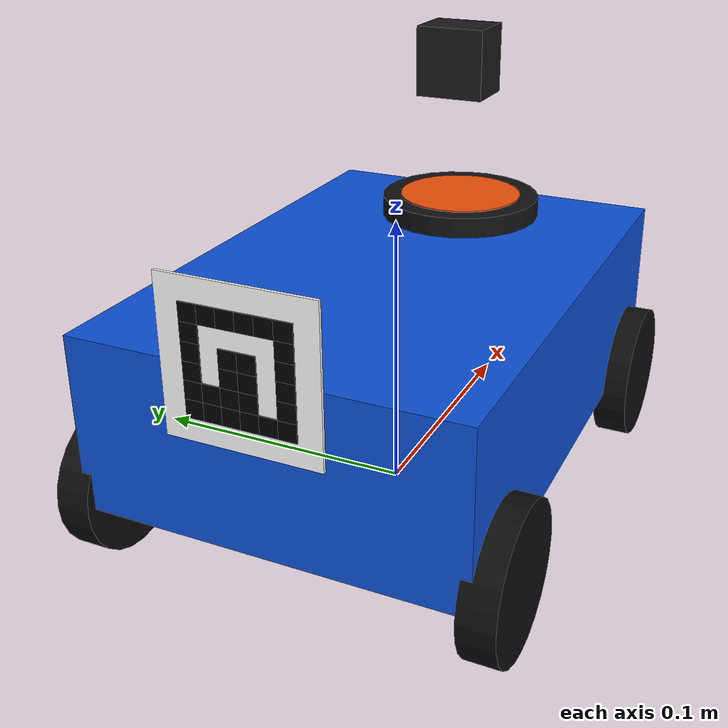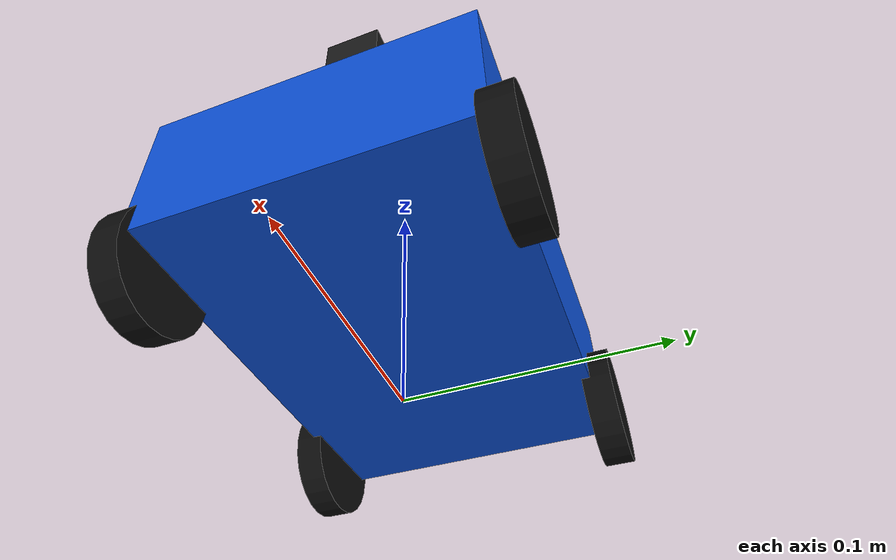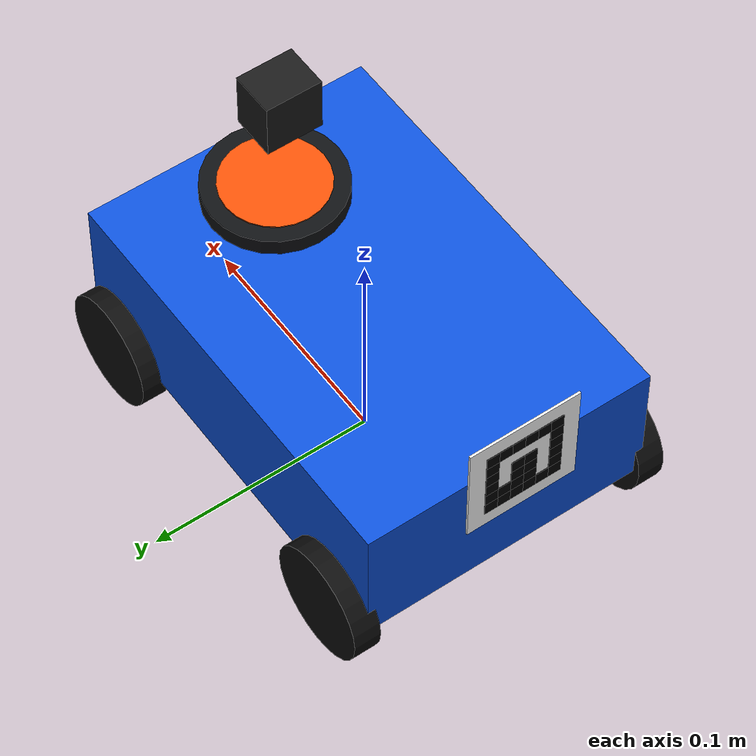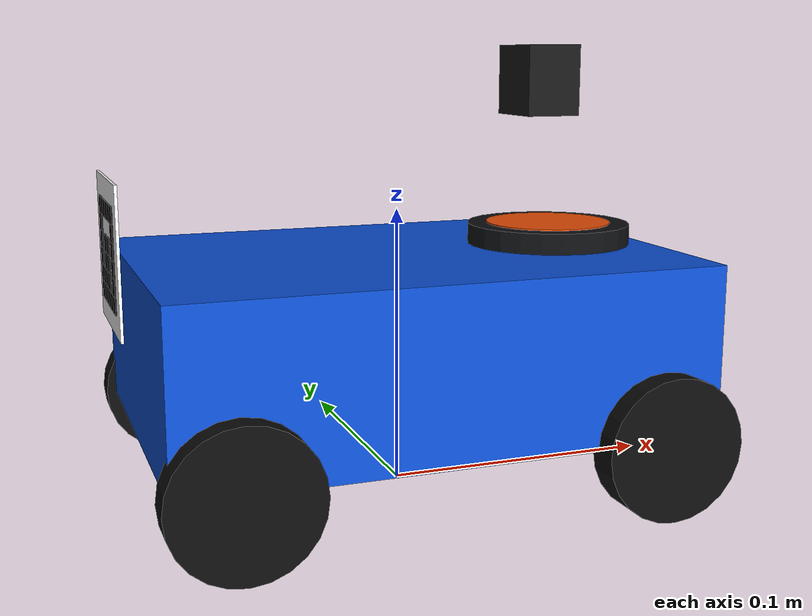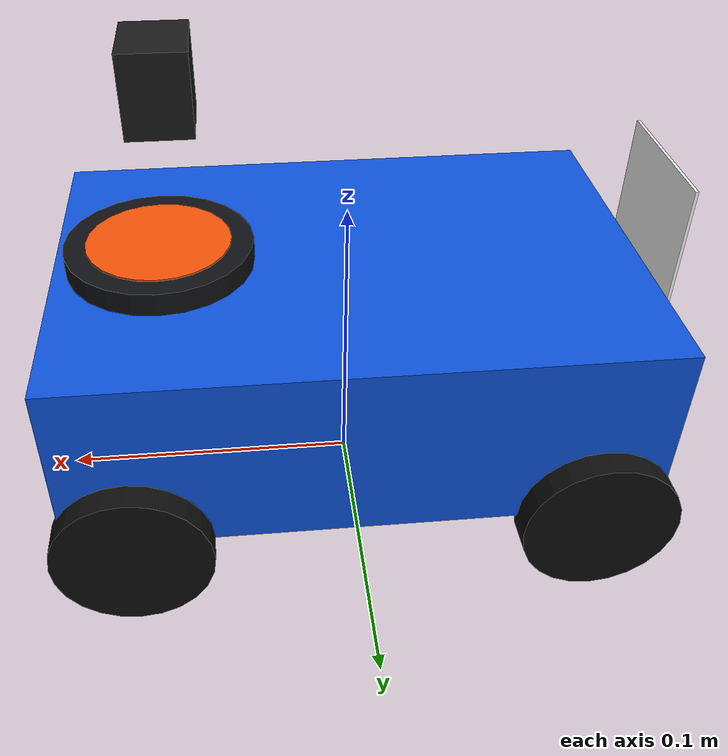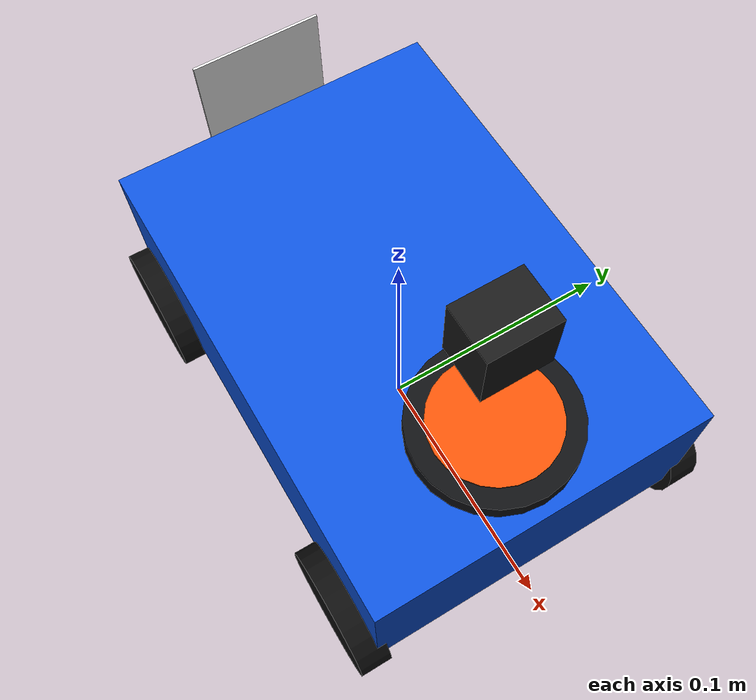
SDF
<sdf version="1.10"><model name="arena_car"><self_collide>false</self_collide><allow_auto_disable>false</allow_auto_disable><link name="chassis"><pose>0 0 0.055 0 0 0</pose><inertial><pose>0 0 0.0 0 0 0</pose><mass>1.697</mass><inertia><ixx>0.0036909749999999996</ixx><ixy>0</ixy><ixz>0</ixz><iyy>0.0061657666666666685</iyy><iyz>0</iyz><izz>0.008838541666666666</izz></inertia></inertial><visual name="visual"><geometry><box><size>0.188 0.13 0.06</size></box></geometry><material><ambient>0.04 0.24 0.65 1</ambient><diffuse>0.05 0.32 0.85 1</diffuse><specular>0.2 0.2 0.2 1</specular></material></visual><visual name="rear_marker_id10_board"><pose>-0.1005 0.0
                0.034999999999999996
                0 0 3.1415926536</pose><geometry><box><size>0.001 0.05 0.05</size></box></geometry><material><ambient>1 1 1 1</ambient><diffuse>1 1 1 1</diffuse><specular>0 0 0 1</specular></material><cast_shadows>false</cast_shadows></visual><visual name="rear_marker_id10_ink_0_0"><pose>-0.10120000000014887
            0.01458333333332619
            0.04958333333333333
            0 0 3.1415926536</pose><geometry><box><size>0.0004 0.005833333333333334 0.005833333333333334</size></box></geometry><material><ambient>0.002 0.002 0.002 1</ambient><diffuse>0.002 0.002 0.002 1</diffuse><specular>0 0 0 1</specular></material><cast_shadows>false</cast_shadows></visual><visual name="rear_marker_id10_ink_0_1"><pose>-0.10120000000008932
            0.008749999999992856
            0.04958333333333333
            0 0 3.1415926536</pose><geometry><box><size>0.0004 0.005833333333333334 0.005833333333333334</size></box></geometry><material><ambient>0.002 0.002 0.002 1</ambient><diffuse>0.002 0.002 0.002 1</diffuse><specular>0 0 0 1</specular></material><cast_shadows>false</cast_shadows></visual><visual name="rear_marker_id10_ink_0_2"><pose>-0.10120000000002978
            0.002916666666659523
            0.04958333333333333
            0 0 3.1415926536</pose><geometry><box><size>0.0004 0.005833333333333334 0.005833333333333334</size></box></geometry><material><ambient>0.002 0.002 0.002 1</ambient><diffuse>0.002 0.002 0.002 1</diffuse><specular>0 0 0 1</specular></material><cast_shadows>false</cast_shadows></visual><visual name="rear_marker_id10_ink_0_3"><pose>-0.10119999999997024
            -0.0029166666666738095
            0.04958333333333333
            0 0 3.1415926536</pose><geometry><box><size>0.0004 0.005833333333333334 0.005833333333333334</size></box></geometry><material><ambient>0.002 0.002 0.002 1</ambient><diffuse>0.002 0.002 0.002 1</diffuse><specular>0 0 0 1</specular></material><cast_shadows>false</cast_shadows></visual><visual name="rear_marker_id10_ink_0_4"><pose>-0.10119999999991071
            -0.008750000000007146
            0.04958333333333333
            0 0 3.1415926536</pose><geometry><box><size>0.0004 0.005833333333333334 0.005833333333333334</size></box></geometry><material><ambient>0.002 0.002 0.002 1</ambient><diffuse>0.002 0.002 0.002 1</diffuse><specular>0 0 0 1</specular></material><cast_shadows>false</cast_shadows></visual><visual name="rear_marker_id10_ink_0_5"><pose>-0.10119999999985116
            -0.014583333333340475
            0.04958333333333333
            0 0 3.1415926536</pose><geometry><box><size>0.0004 0.005833333333333334 0.005833333333333334</size></box></geometry><material><ambient>0.002 0.002 0.002 1</ambient><diffuse>0.002 0.002 0.002 1</diffuse><specular>0 0 0 1</specular></material><cast_shadows>false</cast_shadows></visual><visual name="rear_marker_id10_ink_1_0"><pose>-0.10120000000014887
            0.01458333333332619
            0.04375
            0 0 3.1415926536</pose><geometry><box><size>0.0004 0.005833333333333334 0.005833333333333334</size></box></geometry><material><ambient>0.002 0.002 0.002 1</ambient><diffuse>0.002 0.002 0.002 1</diffuse><specular>0 0 0 1</specular></material><cast_shadows>false</cast_shadows></visual><visual name="rear_marker_id10_ink_1_5"><pose>-0.10119999999985116
            -0.014583333333340475
            0.04375
            0 0 3.1415926536</pose><geometry><box><size>0.0004 0.005833333333333334 0.005833333333333334</size></box></geometry><material><ambient>0.002 0.002 0.002 1</ambient><diffuse>0.002 0.002 0.002 1</diffuse><specular>0 0 0 1</specular></material><cast_shadows>false</cast_shadows></visual><visual name="rear_marker_id10_ink_2_0"><pose>-0.10120000000014887
            0.01458333333332619
            0.03791666666666667
            0 0 3.1415926536</pose><geometry><box><size>0.0004 0.005833333333333334 0.005833333333333334</size></box></geometry><material><ambient>0.002 0.002 0.002 1</ambient><diffuse>0.002 0.002 0.002 1</diffuse><specular>0 0 0 1</specular></material><cast_shadows>false</cast_shadows></visual><visual name="rear_marker_id10_ink_2_2"><pose>-0.10120000000002978
            0.002916666666659523
            0.03791666666666667
            0 0 3.1415926536</pose><geometry><box><size>0.0004 0.005833333333333334 0.005833333333333334</size></box></geometry><material><ambient>0.002 0.002 0.002 1</ambient><diffuse>0.002 0.002 0.002 1</diffuse><specular>0 0 0 1</specular></material><cast_shadows>false</cast_shadows></visual><visual name="rear_marker_id10_ink_2_3"><pose>-0.10119999999997024
            -0.0029166666666738095
            0.03791666666666667
            0 0 3.1415926536</pose><geometry><box><size>0.0004 0.005833333333333334 0.005833333333333334</size></box></geometry><material><ambient>0.002 0.002 0.002 1</ambient><diffuse>0.002 0.002 0.002 1</diffuse><specular>0 0 0 1</specular></material><cast_shadows>false</cast_shadows></visual><visual name="rear_marker_id10_ink_2_5"><pose>-0.10119999999985116
            -0.014583333333340475
            0.03791666666666667
            0 0 3.1415926536</pose><geometry><box><size>0.0004 0.005833333333333334 0.005833333333333334</size></box></geometry><material><ambient>0.002 0.002 0.002 1</ambient><diffuse>0.002 0.002 0.002 1</diffuse><specular>0 0 0 1</specular></material><cast_shadows>false</cast_shadows></visual><visual name="rear_marker_id10_ink_3_0"><pose>-0.10120000000014887
            0.01458333333332619
            0.03208333333333333
            0 0 3.1415926536</pose><geometry><box><size>0.0004 0.005833333333333334 0.005833333333333334</size></box></geometry><material><ambient>0.002 0.002 0.002 1</ambient><diffuse>0.002 0.002 0.002 1</diffuse><specular>0 0 0 1</specular></material><cast_shadows>false</cast_shadows></visual><visual name="rear_marker_id10_ink_3_2"><pose>-0.10120000000002978
            0.002916666666659523
            0.03208333333333333
            0 0 3.1415926536</pose><geometry><box><size>0.0004 0.005833333333333334 0.005833333333333334</size></box></geometry><material><ambient>0.002 0.002 0.002 1</ambient><diffuse>0.002 0.002 0.002 1</diffuse><specular>0 0 0 1</specular></material><cast_shadows>false</cast_shadows></visual><visual name="rear_marker_id10_ink_3_3"><pose>-0.10119999999997024
            -0.0029166666666738095
            0.03208333333333333
            0 0 3.1415926536</pose><geometry><box><size>0.0004 0.005833333333333334 0.005833333333333334</size></box></geometry><material><ambient>0.002 0.002 0.002 1</ambient><diffuse>0.002 0.002 0.002 1</diffuse><specular>0 0 0 1</specular></material><cast_shadows>false</cast_shadows></visual><visual name="rear_marker_id10_ink_3_5"><pose>-0.10119999999985116
            -0.014583333333340475
            0.03208333333333333
            0 0 3.1415926536</pose><geometry><box><size>0.0004 0.005833333333333334 0.005833333333333334</size></box></geometry><material><ambient>0.002 0.002 0.002 1</ambient><diffuse>0.002 0.002 0.002 1</diffuse><specular>0 0 0 1</specular></material><cast_shadows>false</cast_shadows></visual><visual name="rear_marker_id10_ink_4_0"><pose>-0.10120000000014887
            0.01458333333332619
            0.026249999999999996
            0 0 3.1415926536</pose><geometry><box><size>0.0004 0.005833333333333334 0.005833333333333334</size></box></geometry><material><ambient>0.002 0.002 0.002 1</ambient><diffuse>0.002 0.002 0.002 1</diffuse><specular>0 0 0 1</specular></material><cast_shadows>false</cast_shadows></visual><visual name="rear_marker_id10_ink_4_1"><pose>-0.10120000000008932
            0.008749999999992856
            0.026249999999999996
            0 0 3.1415926536</pose><geometry><box><size>0.0004 0.005833333333333334 0.005833333333333334</size></box></geometry><material><ambient>0.002 0.002 0.002 1</ambient><diffuse>0.002 0.002 0.002 1</diffuse><specular>0 0 0 1</specular></material><cast_shadows>false</cast_shadows></visual><visual name="rear_marker_id10_ink_4_2"><pose>-0.10120000000002978
            0.002916666666659523
            0.026249999999999996
            0 0 3.1415926536</pose><geometry><box><size>0.0004 0.005833333333333334 0.005833333333333334</size></box></geometry><material><ambient>0.002 0.002 0.002 1</ambient><diffuse>0.002 0.002 0.002 1</diffuse><specular>0 0 0 1</specular></material><cast_shadows>false</cast_shadows></visual><visual name="rear_marker_id10_ink_4_3"><pose>-0.10119999999997024
            -0.0029166666666738095
            0.026249999999999996
            0 0 3.1415926536</pose><geometry><box><size>0.0004 0.005833333333333334 0.005833333333333334</size></box></geometry><material><ambient>0.002 0.002 0.002 1</ambient><diffuse>0.002 0.002 0.002 1</diffuse><specular>0 0 0 1</specular></material><cast_shadows>false</cast_shadows></visual><visual name="rear_marker_id10_ink_4_5"><pose>-0.10119999999985116
            -0.014583333333340475
            0.026249999999999996
            0 0 3.1415926536</pose><geometry><box><size>0.0004 0.005833333333333334 0.005833333333333334</size></box></geometry><material><ambient>0.002 0.002 0.002 1</ambient><diffuse>0.002 0.002 0.002 1</diffuse><specular>0 0 0 1</specular></material><cast_shadows>false</cast_shadows></visual><visual name="rear_marker_id10_ink_5_0"><pose>-0.10120000000014887
            0.01458333333332619
            0.020416666666666666
            0 0 3.1415926536</pose><geometry><box><size>0.0004 0.005833333333333334 0.005833333333333334</size></box></geometry><material><ambient>0.002 0.002 0.002 1</ambient><diffuse>0.002 0.002 0.002 1</diffuse><specular>0 0 0 1</specular></material><cast_shadows>false</cast_shadows></visual><visual name="rear_marker_id10_ink_5_1"><pose>-0.10120000000008932
            0.008749999999992856
            0.020416666666666666
            0 0 3.1415926536</pose><geometry><box><size>0.0004 0.005833333333333334 0.005833333333333334</size></box></geometry><material><ambient>0.002 0.002 0.002 1</ambient><diffuse>0.002 0.002 0.002 1</diffuse><specular>0 0 0 1</specular></material><cast_shadows>false</cast_shadows></visual><visual name="rear_marker_id10_ink_5_2"><pose>-0.10120000000002978
            0.002916666666659523
            0.020416666666666666
            0 0 3.1415926536</pose><geometry><box><size>0.0004 0.005833333333333334 0.005833333333333334</size></box></geometry><material><ambient>0.002 0.002 0.002 1</ambient><diffuse>0.002 0.002 0.002 1</diffuse><specular>0 0 0 1</specular></material><cast_shadows>false</cast_shadows></visual><visual name="rear_marker_id10_ink_5_3"><pose>-0.10119999999997024
            -0.0029166666666738095
            0.020416666666666666
            0 0 3.1415926536</pose><geometry><box><size>0.0004 0.005833333333333334 0.005833333333333334</size></box></geometry><material><ambient>0.002 0.002 0.002 1</ambient><diffuse>0.002 0.002 0.002 1</diffuse><specular>0 0 0 1</specular></material><cast_shadows>false</cast_shadows></visual><visual name="rear_marker_id10_ink_5_4"><pose>-0.10119999999991071
            -0.008750000000007146
            0.020416666666666666
            0 0 3.1415926536</pose><geometry><box><size>0.0004 0.005833333333333334 0.005833333333333334</size></box></geometry><material><ambient>0.002 0.002 0.002 1</ambient><diffuse>0.002 0.002 0.002 1</diffuse><specular>0 0 0 1</specular></material><cast_shadows>false</cast_shadows></visual><visual name="rear_marker_id10_ink_5_5"><pose>-0.10119999999985116
            -0.014583333333340475
            0.020416666666666666
            0 0 3.1415926536</pose><geometry><box><size>0.0004 0.005833333333333334 0.005833333333333334</size></box></geometry><material><ambient>0.002 0.002 0.002 1</ambient><diffuse>0.002 0.002 0.002 1</diffuse><specular>0 0 0 1</specular></material><cast_shadows>false</cast_shadows></visual><collision name="collision"><geometry><box><size>0.2 0.15 0.06</size></box></geometry></collision></link><frame attached_to="chassis" name="base_link"><pose relative_to="__model__">0 0 0 0 0 0</pose></frame><link name="b0183_link"><pose>0.055 0.0 0.145 0.0 0.0 0.0</pose><inertial><pose>0 0 0 0 0 0</pose><mass>0.01</mass><inertia><ixx>1.041666666666667e-06</ixx><ixy>0</ixy><ixz>0</ixz><iyy>8.541666666666668e-07</iyy><iyz>0</iyz><izz>8.541666666666668e-07</izz></inertia></inertial><visual name="body_visual"><geometry><box><size>0.02 0.025 0.025</size></box></geometry><material><ambient>0.08 0.08 0.08 1</ambient><diffuse>0.10 0.10 0.10 1</diffuse></material></visual><sensor name="b0183_rgb" type="camera"><camera name="color"><horizontal_fov>1.3089969389957472</horizontal_fov><image><width>1280</width><height>720</height><format>R8G8B8</format></image><clip><near>0.02</near><far>20.0</far></clip><lens><intrinsics><fx>834.0642386183716</fx><fy>834.0642386183715</fy><cx>640.0</cx><cy>360.0</cy><s>0.0</s></intrinsics></lens><optical_frame_id>camera_color_optical_frame</optical_frame_id></camera><always_on>true</always_on><update_rate>60.0</update_rate><visualize>false</visualize><topic>camera/color/image_raw</topic></sensor></link><joint name="b0183_fixed_joint" type="fixed"><parent>chassis</parent><child>b0183_link</child></joint><link name="chase_camera_link"><pose>-0.32 0 0.38 0 0.72 0</pose><inertial><pose>0 0 0 0 0 0</pose><mass>1e-06</mass><inertia><ixx>1.6666666666666667e-13</ixx><ixy>0</ixy><ixz>0</ixz><iyy>1.6666666666666667e-13</iyy><iyz>0</iyz><izz>1.6666666666666667e-13</izz></inertia></inertial><sensor name="chase_camera" type="camera"><camera name="chase"><horizontal_fov>1.35</horizontal_fov><image><width>960</width><height>540</height><format>R8G8B8</format></image><clip><near>0.05</near><far>30</far></clip></camera><always_on>true</always_on><update_rate>20.0</update_rate><visualize>false</visualize><topic>sim/chase/image</topic></sensor></link><joint name="chase_camera_fixed_joint" type="fixed"><parent>chassis</parent><child>chase_camera_link</child></joint><link name="lidar_link"><pose>0.06 0.0 0.095 0.0 0.0 0.0</pose><inertial><pose>0 0 0 0 0 0</pose><mass>0.11</mass><inertia><ixx>4.422916666666667e-05</ixx><ixy>0</ixy><ixz>0</ixz><iyy>4.422916666666667e-05</iyy><iyz>0</iyz><izz>6.599999999999999e-05</izz></inertia></inertial><visual name="lidar_body"><pose>0 0 -0.020 0 0 0</pose><geometry><cylinder><radius>0.03</radius><length>0.035</length></cylinder></geometry><material><ambient>0.045 0.045 0.05 1</ambient><diffuse>0.06 0.065 0.075 1</diffuse></material></visual><visual name="lidar_cap"><pose>0 0 -0.003 0 0 0</pose><geometry><cylinder><radius>0.023</radius><length>0.002</length></cylinder></geometry><material><ambient>0.9 0.27 0.025 1</ambient><diffuse>0.95 0.32 0.03 1</diffuse></material></visual><sensor name="rplidar_c1" type="gpu_lidar"><always_on>true</always_on><update_rate>500.0</update_rate><visualize>false</visualize><topic>/sim/lidar_instantaneous</topic><lidar><scan><horizontal><samples>500</samples><resolution>1</resolution><min_angle>-3.141592653589793</min_angle><max_angle>3.129026282975434</max_angle></horizontal></scan><range><min>0.05</min><max>12.0</max><resolution>0.015</resolution></range><noise><type>gaussian</type><mean>0</mean><stddev>0.0</stddev></noise></lidar></sensor></link><joint name="lidar_fixed_joint" type="fixed"><parent>chassis</parent><child>lidar_link</child></joint><link name="front_left_wheel"><pose>0.0725 0.0675 0.025 -1.5707963267948966 0 0</pose><inertial><mass>0.04</mass><inertia><ixx>6.730000000000002e-06</ixx><ixy>0</ixy><ixz>0</ixz><iyy>6.730000000000002e-06</iyy><iyz>0</iyz><izz>1.25e-05</izz></inertia></inertial><visual name="visual"><geometry><cylinder><radius>0.025</radius><length>0.012</length></cylinder></geometry><material><ambient>0.03 0.03 0.03 1</ambient><diffuse>0.05 0.05 0.05 1</diffuse></material></visual><collision name="collision"><geometry><cylinder><radius>0.025</radius><length>0.012</length></cylinder></geometry><surface><friction><ode><mu>0.9</mu><mu2>0.9</mu2><fdir1>0 0 1</fdir1></ode></friction></surface></collision></link><link name="front_right_wheel"><pose>0.0725 -0.0675 0.025 -1.5707963267948966 0 0</pose><inertial><mass>0.04</mass><inertia><ixx>6.730000000000002e-06</ixx><ixy>0</ixy><ixz>0</ixz><iyy>6.730000000000002e-06</iyy><iyz>0</iyz><izz>1.25e-05</izz></inertia></inertial><visual name="visual"><geometry><cylinder><radius>0.025</radius><length>0.012</length></cylinder></geometry><material><ambient>0.03 0.03 0.03 1</ambient><diffuse>0.05 0.05 0.05 1</diffuse></material></visual><collision name="collision"><geometry><cylinder><radius>0.025</radius><length>0.012</length></cylinder></geometry><surface><friction><ode><mu>0.9</mu><mu2>0.9</mu2><fdir1>0 0 1</fdir1></ode></friction></surface></collision></link><link name="rear_left_wheel"><pose>-0.0725 0.0675 0.025 -1.5707963267948966 0 0</pose><inertial><mass>0.04</mass><inertia><ixx>6.730000000000002e-06</ixx><ixy>0</ixy><ixz>0</ixz><iyy>6.730000000000002e-06</iyy><iyz>0</iyz><izz>1.25e-05</izz></inertia></inertial><visual name="visual"><geometry><cylinder><radius>0.025</radius><length>0.012</length></cylinder></geometry><material><ambient>0.03 0.03 0.03 1</ambient><diffuse>0.05 0.05 0.05 1</diffuse></material></visual><collision name="collision"><geometry><cylinder><radius>0.025</radius><length>0.012</length></cylinder></geometry><surface><friction><ode><mu>0.9</mu><mu2>0.9</mu2><fdir1>0 0 1</fdir1></ode></friction></surface></collision></link><link name="rear_right_wheel"><pose>-0.0725 -0.0675 0.025 -1.5707963267948966 0 0</pose><inertial><mass>0.04</mass><inertia><ixx>6.730000000000002e-06</ixx><ixy>0</ixy><ixz>0</ixz><iyy>6.730000000000002e-06</iyy><iyz>0</iyz><izz>1.25e-05</izz></inertia></inertial><visual name="visual"><geometry><cylinder><radius>0.025</radius><length>0.012</length></cylinder></geometry><material><ambient>0.03 0.03 0.03 1</ambient><diffuse>0.05 0.05 0.05 1</diffuse></material></visual><collision name="collision"><geometry><cylinder><radius>0.025</radius><length>0.012</length></cylinder></geometry><surface><friction><ode><mu>0.9</mu><mu2>0.9</mu2><fdir1>0 0 1</fdir1></ode></friction></surface></collision></link><link name="front_left_steering_link"><pose>0.0725 0.0675 0.025 0 0 0</pose><inertial><pose>0 0 0 0 0 0</pose><mass>0.01</mass><inertia><ixx>1.7333333333333332e-07</ixx><ixy>0</ixy><ixz>0</ixz><iyy>1.7333333333333332e-07</iyy><iyz>0</iyz><izz>1.0666666666666667e-07</izz></inertia></inertial><visual name="visual"><geometry><cylinder><radius>0.004</radius><length>0.012</length></cylinder></geometry><material><ambient>0.8 0.8 0.8 1</ambient><diffuse>0.8 0.8 0.8 1</diffuse></material></visual></link><link name="front_right_steering_link"><pose>0.0725 -0.0675 0.025 0 0 0</pose><inertial><pose>0 0 0 0 0 0</pose><mass>0.01</mass><inertia><ixx>1.7333333333333332e-07</ixx><ixy>0</ixy><ixz>0</ixz><iyy>1.7333333333333332e-07</iyy><iyz>0</iyz><izz>1.0666666666666667e-07</izz></inertia></inertial><visual name="visual"><geometry><cylinder><radius>0.004</radius><length>0.012</length></cylinder></geometry><material><ambient>0.8 0.8 0.8 1</ambient><diffuse>0.8 0.8 0.8 1</diffuse></material></visual></link><joint name="front_left_steering_joint" type="revolute"><parent>chassis</parent><child>front_left_steering_link</child><axis><xyz>0 0 1</xyz><limit><lower>-0.45</lower><upper>0.45</upper><effort>5.0</effort><velocity>8.0</velocity></limit></axis></joint><joint name="front_right_steering_joint" type="revolute"><parent>chassis</parent><child>front_right_steering_link</child><axis><xyz>0 0 1</xyz><limit><lower>-0.45</lower><upper>0.45</upper><effort>5.0</effort><velocity>8.0</velocity></limit></axis></joint><joint name="front_left_wheel_joint" type="revolute"><parent>front_left_steering_link</parent><child>front_left_wheel</child><axis><xyz>0 0 1</xyz><limit><lower>-1.79769e+308</lower><upper>1.79769e+308</upper><effort>5.0</effort><velocity>1500.0</velocity></limit><dynamics><damping>5e-06</damping></dynamics></axis></joint><joint name="front_right_wheel_joint" type="revolute"><parent>front_right_steering_link</parent><child>front_right_wheel</child><axis><xyz>0 0 1</xyz><limit><lower>-1.79769e+308</lower><upper>1.79769e+308</upper><effort>5.0</effort><velocity>1500.0</velocity></limit><dynamics><damping>5e-06</damping></dynamics></axis></joint><joint name="rear_left_wheel_joint" type="revolute"><parent>chassis</parent><child>rear_left_wheel</child><axis><xyz>0 0 1</xyz><limit><lower>-1.79769e+308</lower><upper>1.79769e+308</upper><effort>5.0</effort><velocity>1500.0</velocity></limit><dynamics><damping>5e-06</damping></dynamics></axis></joint><joint name="rear_right_wheel_joint" type="revolute"><parent>chassis</parent><child>rear_right_wheel</child><axis><xyz>0 0 1</xyz><limit><lower>-1.79769e+308</lower><upper>1.79769e+308</upper><effort>5.0</effort><velocity>1500.0</velocity></limit><dynamics><damping>5e-06</damping></dynamics></axis></joint><plugin filename="arena-single-motor-system" name="arena::SingleMotorDrive"><wheel_radius>0.025</wheel_radius><wheelbase>0.145</wheelbase><track_width>0.135</track_width><steering_limit>0.45</steering_limit><max_speed>5.5555555556</max_speed><gear_ratio>8.0</gear_ratio><gear_efficiency>1.0</gear_efficiency><motor_torque_limit>0.06</motor_torque_limit><motor_brake_torque_limit>0.045</motor_brake_torque_limit><motor_free_speed>2200.0</motor_free_speed><motor_response_time>0.04</motor_response_time><speed_kp>0.1</speed_kp><speed_ki>0.2</speed_ki><acceleration_limit>3.0</acceleration_limit><command_timeout>0.5</command_timeout><carrier_drag>0.0</carrier_drag><differential_viscosity>0.0</differential_viscosity><differential_torque_limit>0.0</differential_torque_limit><steering_gain>0.4</steering_gain><steering_integral_gain>0.25</steering_integral_gain><steering_velocity_gain>0.003</steering_velocity_gain><steering_torque_limit>0.12</steering_torque_limit><steering_rate_limit>4.0</steering_rate_limit></plugin><plugin filename="gz-sim-wheel-slip-system" name="gz::sim::systems::WheelSlip"><wheel link_name="front_left_wheel"><slip_compliance_lateral>0.02</slip_compliance_lateral><slip_compliance_longitudinal>0.02</slip_compliance_longitudinal><wheel_normal_force>4.905</wheel_normal_force><wheel_radius>0.025</wheel_radius></wheel><wheel link_name="front_right_wheel"><slip_compliance_lateral>0.02</slip_compliance_lateral><slip_compliance_longitudinal>0.02</slip_compliance_longitudinal><wheel_normal_force>4.905</wheel_normal_force><wheel_radius>0.025</wheel_radius></wheel><wheel link_name="rear_left_wheel"><slip_compliance_lateral>0.02</slip_compliance_lateral><slip_compliance_longitudinal>0.02</slip_compliance_longitudinal><wheel_normal_force>4.905</wheel_normal_force><wheel_radius>0.025</wheel_radius></wheel><wheel link_name="rear_right_wheel"><slip_compliance_lateral>0.02</slip_compliance_lateral><slip_compliance_longitudinal>0.02</slip_compliance_longitudinal><wheel_normal_force>4.905</wheel_normal_force><wheel_radius>0.025</wheel_radius></wheel></plugin><plugin filename="gz-sim-joint-state-publisher-system" name="gz::sim::systems::JointStatePublisher"><topic>/model/arena_car/joint_state</topic></plugin><link name="lsm6dsox_link"><pose>0.0 0.0 0.06 0 0 0</pose><inertial><mass>0.003</mass><inertia><ixx>0.0000001</ixx><iyy>0.0000001</iyy><izz>0.0000001</izz></inertia></inertial><sensor name="lsm6dsox_imu" type="imu"><topic>/imu/data</topic><update_rate>208.0</update_rate><always_on>true</always_on><imu><angular_velocity><x><noise type="gaussian"><mean>0</mean><stddev>0.001</stddev></noise></x><y><noise type="gaussian"><mean>0</mean><stddev>0.001</stddev></noise></y><z><noise type="gaussian"><mean>0</mean><stddev>0.001</stddev></noise></z></angular_velocity><linear_acceleration><x><noise type="gaussian"><mean>0</mean><stddev>0.01</stddev></noise></x><y><noise type="gaussian"><mean>0</mean><stddev>0.01</stddev></noise></y><z><noise type="gaussian"><mean>0</mean><stddev>0.01</stddev></noise></z></linear_acceleration></imu></sensor></link><joint name="lsm6dsox_fixed_joint" type="fixed"><parent>chassis</parent><child>lsm6dsox_link</child></joint></model></sdf>
